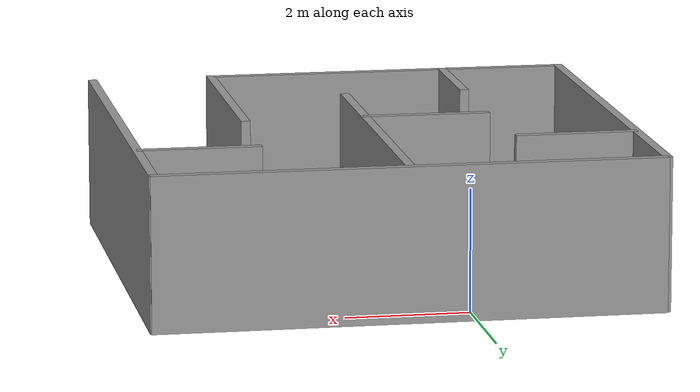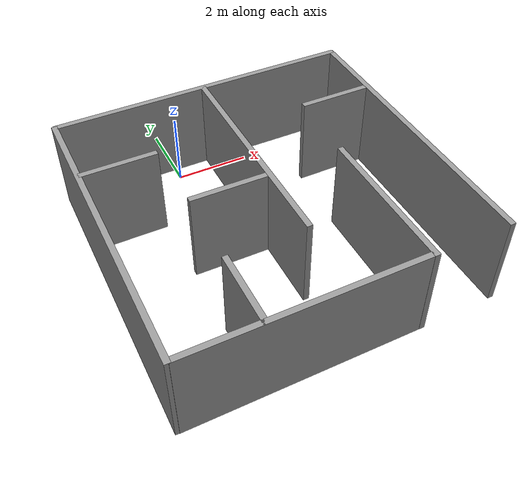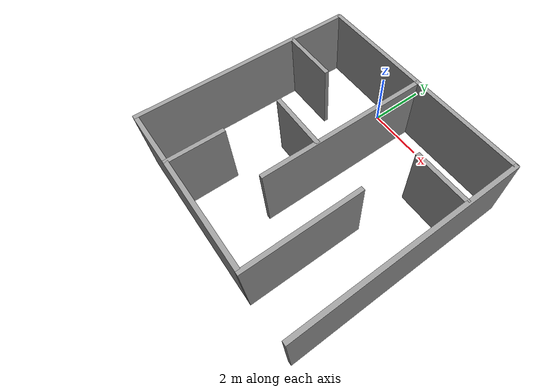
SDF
<?xml version='1.0'?>
<sdf version='1.7'>
  <model name='turtlebot3_world'>
    <link name='turtlebot3_world_1::Wall_11'>
      <pose>1.04089 -2.53595 0 0 -0 1.5708</pose>
      <self_collide>0</self_collide>
      <enable_wind>0</enable_wind>
      <kinematic>0</kinematic>
      <visual name='Wall_11_Visual'>
        <pose>0 0 1.25 0 -0 0</pose>
        <geometry>
          <box>
            <size>6 0.15 2.5</size>
          </box>
        </geometry>
        <material>
          <script>
            <uri>file://media/materials/scripts/gazebo.material</uri>
            <name>Gazebo/Grey</name>
          </script>
          <ambient>1 1 1 1</ambient>
          <shader type='pixel'/>
        </material>
        <meta>
          <layer>0</layer>
        </meta>
        <transparency>0</transparency>
        <cast_shadows>1</cast_shadows>
      </visual>
      <collision name='Wall_11_Collision'>
        <laser_retro>0</laser_retro>
        <max_contacts>10</max_contacts>
        <pose>0 0 1.25 0 -0 0</pose>
        <geometry>
          <box>
            <size>6 0.15 2.5</size>
          </box>
        </geometry>
        <surface>
          <friction>
            <ode>
              <mu>1</mu>
              <mu2>1</mu2>
              <fdir1>0 0 0</fdir1>
              <slip1>0</slip1>
              <slip2>0</slip2>
            </ode>
            <torsional>
              <coefficient>1</coefficient>
              <patch_radius>0</patch_radius>
              <surface_radius>0</surface_radius>
              <use_patch_radius>1</use_patch_radius>
              <ode>
                <slip>0</slip>
              </ode>
            </torsional>
          </friction>
          <bounce>
            <restitution_coefficient>0</restitution_coefficient>
            <threshold>1e+06</threshold>
          </bounce>
          <contact>
            <collide_without_contact>0</collide_without_contact>
            <collide_without_contact_bitmask>1</collide_without_contact_bitmask>
            <collide_bitmask>1</collide_bitmask>
            <ode>
              <soft_cfm>0</soft_cfm>
              <soft_erp>0.2</soft_erp>
              <kp>1e+13</kp>
              <kd>1</kd>
              <max_vel>0.01</max_vel>
              <min_depth>0</min_depth>
            </ode>
            <bullet>
              <split_impulse>1</split_impulse>
              <split_impulse_penetration_threshold>-0.01</split_impulse_penetration_threshold>
              <soft_cfm>0</soft_cfm>
              <soft_erp>0.2</soft_erp>
              <kp>1e+13</kp>
              <kd>1</kd>
            </bullet>
          </contact>
        </surface>
      </collision>
    </link>
    <link name='turtlebot3_world_1::Wall_12'>
      <pose>1.02488 0.456313 0 0 -0 0</pose>
      <self_collide>0</self_collide>
      <enable_wind>0</enable_wind>
      <kinematic>0</kinematic>
      <inertial>
        <inertia>
          <ixx>0</ixx>
          <ixy>0</ixy>
          <ixz>0</ixz>
          <iyy>0</iyy>
          <iyz>0</iyz>
          <izz>0</izz>
        </inertia>
        <mass>0</mass>
        <pose>0 0 0 0 -0 0</pose>
      </inertial>
      <visual name='Wall_12_Visual'>
        <pose>0 0 1.25 0 -0 0</pose>
        <geometry>
          <box>
            <size>8.18762 0.15 2.5</size>
          </box>
        </geometry>
        <material>
          <script>
            <uri>file://media/materials/scripts/gazebo.material</uri>
            <name>Gazebo/Grey</name>
          </script>
          <ambient>1 1 1 1</ambient>
          <shader type='pixel'/>
        </material>
        <meta>
          <layer>0</layer>
        </meta>
        <transparency>0</transparency>
        <cast_shadows>1</cast_shadows>
      </visual>
      <collision name='Wall_12_Collision'>
        <laser_retro>0</laser_retro>
        <max_contacts>10</max_contacts>
        <pose>0 0 1.25 0 -0 0</pose>
        <geometry>
          <box>
            <size>8.18762 0.15 2.5</size>
          </box>
        </geometry>
        <surface>
          <friction>
            <ode>
              <mu>1</mu>
              <mu2>1</mu2>
              <fdir1>0 0 0</fdir1>
              <slip1>0</slip1>
              <slip2>0</slip2>
            </ode>
            <torsional>
              <coefficient>1</coefficient>
              <patch_radius>0</patch_radius>
              <surface_radius>0</surface_radius>
              <use_patch_radius>1</use_patch_radius>
              <ode>
                <slip>0</slip>
              </ode>
            </torsional>
          </friction>
          <bounce>
            <restitution_coefficient>0</restitution_coefficient>
            <threshold>1e+06</threshold>
          </bounce>
          <contact>
            <collide_without_contact>0</collide_without_contact>
            <collide_without_contact_bitmask>1</collide_without_contact_bitmask>
            <collide_bitmask>1</collide_bitmask>
            <ode>
              <soft_cfm>0</soft_cfm>
              <soft_erp>0.2</soft_erp>
              <kp>1e+13</kp>
              <kd>1</kd>
              <max_vel>0.01</max_vel>
              <min_depth>0</min_depth>
            </ode>
            <bullet>
              <split_impulse>1</split_impulse>
              <split_impulse_penetration_threshold>-0.01</split_impulse_penetration_threshold>
              <soft_cfm>0</soft_cfm>
              <soft_erp>0.2</soft_erp>
              <kp>1e+13</kp>
              <kd>1</kd>
            </bullet>
          </contact>
        </surface>
      </collision>
    </link>
    <link name='turtlebot3_world_1::Wall_13'>
      <pose>5.06339 -3.48727 0 0 0 -1.5708</pose>
      <self_collide>0</self_collide>
      <enable_wind>0</enable_wind>
      <kinematic>0</kinematic>
      <visual name='Wall_13_Visual'>
        <pose>0 0 1.25 0 -0 0</pose>
        <geometry>
          <box>
            <size>8 0.15 2.5</size>
          </box>
        </geometry>
        <material>
          <script>
            <uri>file://media/materials/scripts/gazebo.material</uri>
            <name>Gazebo/Grey</name>
          </script>
          <ambient>1 1 1 1</ambient>
          <shader type='pixel'/>
        </material>
        <meta>
          <layer>0</layer>
        </meta>
        <transparency>0</transparency>
        <cast_shadows>1</cast_shadows>
      </visual>
      <collision name='Wall_13_Collision'>
        <laser_retro>0</laser_retro>
        <max_contacts>10</max_contacts>
        <pose>0 0 1.25 0 -0 0</pose>
        <geometry>
          <box>
            <size>8 0.15 2.5</size>
          </box>
        </geometry>
        <surface>
          <friction>
            <ode>
              <mu>1</mu>
              <mu2>1</mu2>
              <fdir1>0 0 0</fdir1>
              <slip1>0</slip1>
              <slip2>0</slip2>
            </ode>
            <torsional>
              <coefficient>1</coefficient>
              <patch_radius>0</patch_radius>
              <surface_radius>0</surface_radius>
              <use_patch_radius>1</use_patch_radius>
              <ode>
                <slip>0</slip>
              </ode>
            </torsional>
          </friction>
          <bounce>
            <restitution_coefficient>0</restitution_coefficient>
            <threshold>1e+06</threshold>
          </bounce>
          <contact>
            <collide_without_contact>0</collide_without_contact>
            <collide_without_contact_bitmask>1</collide_without_contact_bitmask>
            <collide_bitmask>1</collide_bitmask>
            <ode>
              <soft_cfm>0</soft_cfm>
              <soft_erp>0.2</soft_erp>
              <kp>1e+13</kp>
              <kd>1</kd>
              <max_vel>0.01</max_vel>
              <min_depth>0</min_depth>
            </ode>
            <bullet>
              <split_impulse>1</split_impulse>
              <split_impulse_penetration_threshold>-0.01</split_impulse_penetration_threshold>
              <soft_cfm>0</soft_cfm>
              <soft_erp>0.2</soft_erp>
              <kp>1e+13</kp>
              <kd>1</kd>
            </bullet>
          </contact>
        </surface>
      </collision>
    </link>
    <link name='turtlebot3_world_1::Wall_4'>
      <pose>-3.04436 -3.49919 -0 0 0 -1.5708</pose>
      <self_collide>0</self_collide>
      <enable_wind>0</enable_wind>
      <kinematic>0</kinematic>
      <visual name='Wall_4_Visual'>
        <pose>0 0 1.25 0 -0 0</pose>
        <geometry>
          <box>
            <size>8 0.15 2.5</size>
          </box>
        </geometry>
        <material>
          <script>
            <uri>file://media/materials/scripts/gazebo.material</uri>
            <name>Gazebo/Grey</name>
          </script>
          <ambient>1 1 1 1</ambient>
          <shader type='pixel'/>
        </material>
        <meta>
          <layer>0</layer>
        </meta>
        <transparency>0</transparency>
        <cast_shadows>1</cast_shadows>
      </visual>
      <collision name='Wall_4_Collision'>
        <laser_retro>0</laser_retro>
        <max_contacts>10</max_contacts>
        <pose>0 0 1.25 0 -0 0</pose>
        <geometry>
          <box>
            <size>8 0.15 2.5</size>
          </box>
        </geometry>
        <surface>
          <friction>
            <ode>
              <mu>1</mu>
              <mu2>1</mu2>
              <fdir1>0 0 0</fdir1>
              <slip1>0</slip1>
              <slip2>0</slip2>
            </ode>
            <torsional>
              <coefficient>1</coefficient>
              <patch_radius>0</patch_radius>
              <surface_radius>0</surface_radius>
              <use_patch_radius>1</use_patch_radius>
              <ode>
                <slip>0</slip>
              </ode>
            </torsional>
          </friction>
          <bounce>
            <restitution_coefficient>0</restitution_coefficient>
            <threshold>1e+06</threshold>
          </bounce>
          <contact>
            <collide_without_contact>0</collide_without_contact>
            <collide_without_contact_bitmask>1</collide_without_contact_bitmask>
            <collide_bitmask>1</collide_bitmask>
            <ode>
              <soft_cfm>0</soft_cfm>
              <soft_erp>0.2</soft_erp>
              <kp>1e+13</kp>
              <kd>1</kd>
              <max_vel>0.01</max_vel>
              <min_depth>0</min_depth>
            </ode>
            <bullet>
              <split_impulse>1</split_impulse>
              <split_impulse_penetration_threshold>-0.01</split_impulse_penetration_threshold>
              <soft_cfm>0</soft_cfm>
              <soft_erp>0.2</soft_erp>
              <kp>1e+13</kp>
              <kd>1</kd>
            </bullet>
          </contact>
        </surface>
      </collision>
    </link>
    <link name='turtlebot3_world_1::Wall_5'>
      <pose>-0.02127 -7.43308 0 0 -0 0</pose>
      <self_collide>0</self_collide>
      <enable_wind>0</enable_wind>
      <kinematic>0</kinematic>
      <visual name='Wall_5_Visual'>
        <pose>0 0 1.25 0 -0 0</pose>
        <geometry>
          <box>
            <size>6 0.15 2.5</size>
          </box>
        </geometry>
        <material>
          <script>
            <uri>file://media/materials/scripts/gazebo.material</uri>
            <name>Gazebo/Grey</name>
          </script>
          <ambient>1 1 1 1</ambient>
          <shader type='pixel'/>
        </material>
        <meta>
          <layer>0</layer>
        </meta>
        <transparency>0</transparency>
        <cast_shadows>1</cast_shadows>
      </visual>
      <collision name='Wall_5_Collision'>
        <laser_retro>0</laser_retro>
        <max_contacts>10</max_contacts>
        <pose>0 0 1.25 0 -0 0</pose>
        <geometry>
          <box>
            <size>6 0.15 2.5</size>
          </box>
        </geometry>
        <surface>
          <friction>
            <ode>
              <mu>1</mu>
              <mu2>1</mu2>
              <fdir1>0 0 0</fdir1>
              <slip1>0</slip1>
              <slip2>0</slip2>
            </ode>
            <torsional>
              <coefficient>1</coefficient>
              <patch_radius>0</patch_radius>
              <surface_radius>0</surface_radius>
              <use_patch_radius>1</use_patch_radius>
              <ode>
                <slip>0</slip>
              </ode>
            </torsional>
          </friction>
          <bounce>
            <restitution_coefficient>0</restitution_coefficient>
            <threshold>1e+06</threshold>
          </bounce>
          <contact>
            <collide_without_contact>0</collide_without_contact>
            <collide_without_contact_bitmask>1</collide_without_contact_bitmask>
            <collide_bitmask>1</collide_bitmask>
            <ode>
              <soft_cfm>0</soft_cfm>
              <soft_erp>0.2</soft_erp>
              <kp>1e+13</kp>
              <kd>1</kd>
              <max_vel>0.01</max_vel>
              <min_depth>0</min_depth>
            </ode>
            <bullet>
              <split_impulse>1</split_impulse>
              <split_impulse_penetration_threshold>-0.01</split_impulse_penetration_threshold>
              <soft_cfm>0</soft_cfm>
              <soft_erp>0.2</soft_erp>
              <kp>1e+13</kp>
              <kd>1</kd>
            </bullet>
          </contact>
        </surface>
      </collision>
    </link>
    <link name='turtlebot3_world_1::Wall_6'>
      <pose>3.03142 -5.49178 0 0 -0 1.5708</pose>
      <self_collide>0</self_collide>
      <enable_wind>0</enable_wind>
      <kinematic>0</kinematic>
      <inertial>
        <inertia>
          <ixx>0</ixx>
          <ixy>0</ixy>
          <ixz>0</ixz>
          <iyy>0</iyy>
          <iyz>0</iyz>
          <izz>0</izz>
        </inertia>
        <mass>0</mass>
        <pose>0 0 0 0 -0 0</pose>
      </inertial>
      <visual name='Wall_6_Visual'>
        <pose>0 0 1.25 0 -0 0</pose>
        <geometry>
          <box>
            <size>4.03787 0.15 2.5</size>
          </box>
        </geometry>
        <material>
          <script>
            <uri>file://media/materials/scripts/gazebo.material</uri>
            <name>Gazebo/Grey</name>
          </script>
          <ambient>1 1 1 1</ambient>
          <shader type='pixel'/>
        </material>
        <meta>
          <layer>0</layer>
        </meta>
        <transparency>0</transparency>
        <cast_shadows>1</cast_shadows>
      </visual>
      <collision name='Wall_6_Collision'>
        <laser_retro>0</laser_retro>
        <max_contacts>10</max_contacts>
        <pose>0 0 1.25 0 -0 0</pose>
        <geometry>
          <box>
            <size>4.03787 0.15 2.5</size>
          </box>
        </geometry>
        <surface>
          <friction>
            <ode>
              <mu>1</mu>
              <mu2>1</mu2>
              <fdir1>0 0 0</fdir1>
              <slip1>0</slip1>
              <slip2>0</slip2>
            </ode>
            <torsional>
              <coefficient>1</coefficient>
              <patch_radius>0</patch_radius>
              <surface_radius>0</surface_radius>
              <use_patch_radius>1</use_patch_radius>
              <ode>
                <slip>0</slip>
              </ode>
            </torsional>
          </friction>
          <bounce>
            <restitution_coefficient>0</restitution_coefficient>
            <threshold>1e+06</threshold>
          </bounce>
          <contact>
            <collide_without_contact>0</collide_without_contact>
            <collide_without_contact_bitmask>1</collide_without_contact_bitmask>
            <collide_bitmask>1</collide_bitmask>
            <ode>
              <soft_cfm>0</soft_cfm>
              <soft_erp>0.2</soft_erp>
              <kp>1e+13</kp>
              <kd>1</kd>
              <max_vel>0.01</max_vel>
              <min_depth>0</min_depth>
            </ode>
            <bullet>
              <split_impulse>1</split_impulse>
              <split_impulse_penetration_threshold>-0.01</split_impulse_penetration_threshold>
              <soft_cfm>0</soft_cfm>
              <soft_erp>0.2</soft_erp>
              <kp>1e+13</kp>
              <kd>1</kd>
            </bullet>
          </contact>
        </surface>
      </collision>
    </link>
    <link name='turtlebot3_world_1::Wall_7'>
      <pose>-2.05279 -1.61838 0 0 -0 3.14159</pose>
      <self_collide>0</self_collide>
      <enable_wind>0</enable_wind>
      <kinematic>0</kinematic>
      <visual name='Wall_7_Visual'>
        <pose>0 0 1.25 0 -0 0</pose>
        <geometry>
          <box>
            <size>2 0.15 2.5</size>
          </box>
        </geometry>
        <material>
          <script>
            <uri>file://media/materials/scripts/gazebo.material</uri>
            <name>Gazebo/Grey</name>
          </script>
          <ambient>1 1 1 1</ambient>
          <shader type='pixel'/>
        </material>
        <meta>
          <layer>0</layer>
        </meta>
        <transparency>0</transparency>
        <cast_shadows>1</cast_shadows>
      </visual>
      <collision name='Wall_7_Collision'>
        <laser_retro>0</laser_retro>
        <max_contacts>10</max_contacts>
        <pose>0 0 1.25 0 -0 0</pose>
        <geometry>
          <box>
            <size>2 0.15 2.5</size>
          </box>
        </geometry>
        <surface>
          <friction>
            <ode>
              <mu>1</mu>
              <mu2>1</mu2>
              <fdir1>0 0 0</fdir1>
              <slip1>0</slip1>
              <slip2>0</slip2>
            </ode>
            <torsional>
              <coefficient>1</coefficient>
              <patch_radius>0</patch_radius>
              <surface_radius>0</surface_radius>
              <use_patch_radius>1</use_patch_radius>
              <ode>
                <slip>0</slip>
              </ode>
            </torsional>
          </friction>
          <bounce>
            <restitution_coefficient>0</restitution_coefficient>
            <threshold>1e+06</threshold>
          </bounce>
          <contact>
            <collide_without_contact>0</collide_without_contact>
            <collide_without_contact_bitmask>1</collide_without_contact_bitmask>
            <collide_bitmask>1</collide_bitmask>
            <ode>
              <soft_cfm>0</soft_cfm>
              <soft_erp>0.2</soft_erp>
              <kp>1e+13</kp>
              <kd>1</kd>
              <max_vel>0.01</max_vel>
              <min_depth>0</min_depth>
            </ode>
            <bullet>
              <split_impulse>1</split_impulse>
              <split_impulse_penetration_threshold>-0.01</split_impulse_penetration_threshold>
              <soft_cfm>0</soft_cfm>
              <soft_erp>0.2</soft_erp>
              <kp>1e+13</kp>
              <kd>1</kd>
            </bullet>
          </contact>
        </surface>
      </collision>
    </link>
    <link name='Wall_7_clone'>
      <pose>4.07355 -1.4936 0 0 -0 3.14159</pose>
      <self_collide>0</self_collide>
      <enable_wind>0</enable_wind>
      <kinematic>0</kinematic>
      <visual name='Wall_7_Visual'>
        <pose>0 0 1.25 0 -0 0</pose>
        <geometry>
          <box>
            <size>2 0.15 2.5</size>
          </box>
        </geometry>
        <material>
          <script>
            <uri>file://media/materials/scripts/gazebo.material</uri>
            <name>Gazebo/Grey</name>
          </script>
          <ambient>1 1 1 1</ambient>
          <shader type='pixel'/>
        </material>
        <meta>
          <layer>0</layer>
        </meta>
        <transparency>0</transparency>
        <cast_shadows>1</cast_shadows>
      </visual>
      <collision name='Wall_7_Collision'>
        <laser_retro>0</laser_retro>
        <max_contacts>10</max_contacts>
        <pose>0 0 1.25 0 -0 0</pose>
        <geometry>
          <box>
            <size>2 0.15 2.5</size>
          </box>
        </geometry>
        <surface>
          <friction>
            <ode>
              <mu>1</mu>
              <mu2>1</mu2>
              <fdir1>0 0 0</fdir1>
              <slip1>0</slip1>
              <slip2>0</slip2>
            </ode>
            <torsional>
              <coefficient>1</coefficient>
              <patch_radius>0</patch_radius>
              <surface_radius>0</surface_radius>
              <use_patch_radius>1</use_patch_radius>
              <ode>
                <slip>0</slip>
              </ode>
            </torsional>
          </friction>
          <bounce>
            <restitution_coefficient>0</restitution_coefficient>
            <threshold>1e+06</threshold>
          </bounce>
          <contact>
            <collide_without_contact>0</collide_without_contact>
            <collide_without_contact_bitmask>1</collide_without_contact_bitmask>
            <collide_bitmask>1</collide_bitmask>
            <ode>
              <soft_cfm>0</soft_cfm>
              <soft_erp>0.2</soft_erp>
              <kp>1e+13</kp>
              <kd>1</kd>
              <max_vel>0.01</max_vel>
              <min_depth>0</min_depth>
            </ode>
            <bullet>
              <split_impulse>1</split_impulse>
              <split_impulse_penetration_threshold>-0.01</split_impulse_penetration_threshold>
              <soft_cfm>0</soft_cfm>
              <soft_erp>0.2</soft_erp>
              <kp>1e+13</kp>
              <kd>1</kd>
            </bullet>
          </contact>
        </surface>
      </collision>
    </link>
    <link name='turtlebot3_world_1::Wall_9'>
      <pose>-0.998526 -6.50315 0 0 -0 1.5708</pose>
      <self_collide>0</self_collide>
      <enable_wind>0</enable_wind>
      <kinematic>0</kinematic>
      <visual name='Wall_9_Visual'>
        <pose>0 0 1.25 0 -0 0</pose>
        <geometry>
          <box>
            <size>2 0.15 2.5</size>
          </box>
        </geometry>
        <material>
          <script>
            <uri>file://media/materials/scripts/gazebo.material</uri>
            <name>Gazebo/Grey</name>
          </script>
          <ambient>1 1 1 1</ambient>
          <shader type='pixel'/>
        </material>
        <meta>
          <layer>0</layer>
        </meta>
        <transparency>0</transparency>
        <cast_shadows>1</cast_shadows>
      </visual>
      <collision name='Wall_9_Collision'>
        <laser_retro>0</laser_retro>
        <max_contacts>10</max_contacts>
        <pose>0 0 1.25 0 -0 0</pose>
        <geometry>
          <box>
            <size>2 0.15 2.5</size>
          </box>
        </geometry>
        <surface>
          <friction>
            <ode>
              <mu>1</mu>
              <mu2>1</mu2>
              <fdir1>0 0 0</fdir1>
              <slip1>0</slip1>
              <slip2>0</slip2>
            </ode>
            <torsional>
              <coefficient>1</coefficient>
              <patch_radius>0</patch_radius>
              <surface_radius>0</surface_radius>
              <use_patch_radius>1</use_patch_radius>
              <ode>
                <slip>0</slip>
              </ode>
            </torsional>
          </friction>
          <bounce>
            <restitution_coefficient>0</restitution_coefficient>
            <threshold>1e+06</threshold>
          </bounce>
          <contact>
            <collide_without_contact>0</collide_without_contact>
            <collide_without_contact_bitmask>1</collide_without_contact_bitmask>
            <collide_bitmask>1</collide_bitmask>
            <ode>
              <soft_cfm>0</soft_cfm>
              <soft_erp>0.2</soft_erp>
              <kp>1e+13</kp>
              <kd>1</kd>
              <max_vel>0.01</max_vel>
              <min_depth>0</min_depth>
            </ode>
            <bullet>
              <split_impulse>1</split_impulse>
              <split_impulse_penetration_threshold>-0.01</split_impulse_penetration_threshold>
              <soft_cfm>0</soft_cfm>
              <soft_erp>0.2</soft_erp>
              <kp>1e+13</kp>
              <kd>1</kd>
            </bullet>
          </contact>
        </surface>
      </collision>
    </link>
    <link name='Wall_9_clone'>
      <pose>0.027263 -3.55795 0 0 -0 3.13379</pose>
      <self_collide>0</self_collide>
      <enable_wind>0</enable_wind>
      <kinematic>0</kinematic>
      <visual name='Wall_9_Visual'>
        <pose>0 0 1.25 0 -0 0</pose>
        <geometry>
          <box>
            <size>2.10237 0.15 2.5</size>
          </box>
        </geometry>
        <material>
          <script>
            <uri>file://media/materials/scripts/gazebo.material</uri>
            <name>Gazebo/Grey</name>
          </script>
          <ambient>1 1 1 1</ambient>
          <shader type='pixel'/>
        </material>
        <meta>
          <layer>0</layer>
        </meta>
        <transparency>0</transparency>
        <cast_shadows>1</cast_shadows>
      </visual>
      <collision name='Wall_9_Collision'>
        <laser_retro>0</laser_retro>
        <max_contacts>10</max_contacts>
        <pose>0 0 1.25 0 -0 0</pose>
        <geometry>
          <box>
            <size>2.10237 0.15 2.5</size>
          </box>
        </geometry>
        <surface>
          <friction>
            <ode>
              <mu>1</mu>
              <mu2>1</mu2>
              <fdir1>0 0 0</fdir1>
              <slip1>0</slip1>
              <slip2>0</slip2>
            </ode>
            <torsional>
              <coefficient>1</coefficient>
              <patch_radius>0</patch_radius>
              <surface_radius>0</surface_radius>
              <use_patch_radius>1</use_patch_radius>
              <ode>
                <slip>0</slip>
              </ode>
            </torsional>
          </friction>
          <bounce>
            <restitution_coefficient>0</restitution_coefficient>
            <threshold>1e+06</threshold>
          </bounce>
          <contact>
            <collide_without_contact>0</collide_without_contact>
            <collide_without_contact_bitmask>1</collide_without_contact_bitmask>
            <collide_bitmask>1</collide_bitmask>
            <ode>
              <soft_cfm>0</soft_cfm>
              <soft_erp>0.2</soft_erp>
              <kp>1e+13</kp>
              <kd>1</kd>
              <max_vel>0.01</max_vel>
              <min_depth>0</min_depth>
            </ode>
            <bullet>
              <split_impulse>1</split_impulse>
              <split_impulse_penetration_threshold>-0.01</split_impulse_penetration_threshold>
              <soft_cfm>0</soft_cfm>
              <soft_erp>0.2</soft_erp>
              <kp>1e+13</kp>
              <kd>1</kd>
            </bullet>
          </contact>
        </surface>
      </collision>
    </link>
    <static>1</static>
    <allow_auto_disable>1</allow_auto_disable>
  </model>
</sdf>
